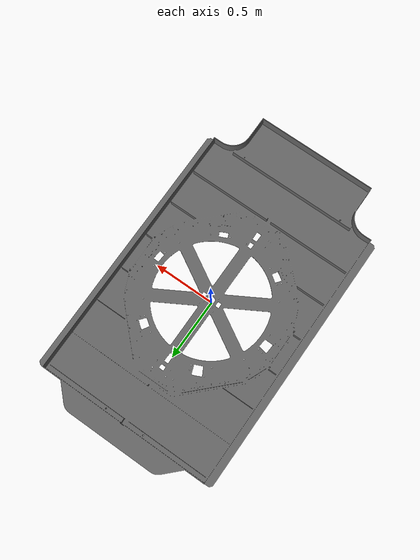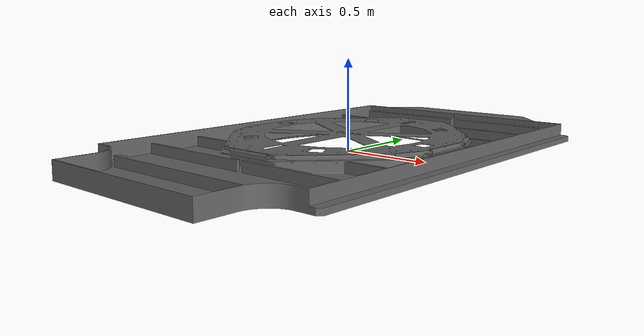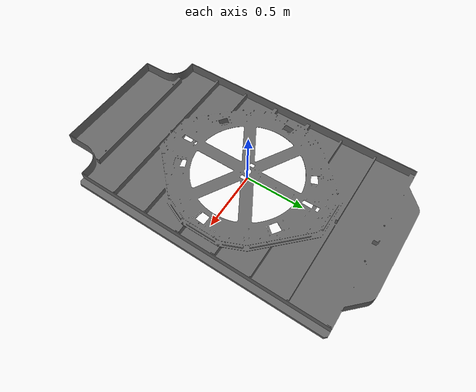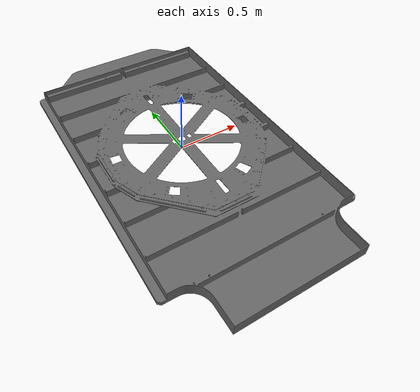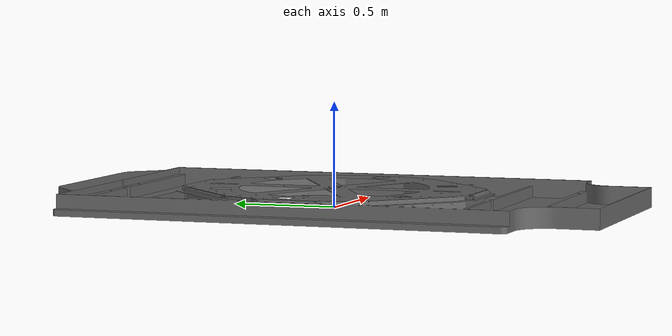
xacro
<?xml version="1.0"?>
<robot name="bru" xmlns:xacro="http://www.ros.org/wiki/xacro">

  <xacro:property name="bru_mesh_x" value="0.0"/>
  <xacro:property name="bru_mesh_y" value="0.0"/>
  <xacro:property name="bru_mesh_z" value="0.0"/>
  <xacro:property name="bru_mesh_yaw" value="1.57"/>

  <!-- Set to 0.001 for a millimetre STL exported from FreeCAD.
       Set to 1.0 if the STL is already in metres. -->
  <xacro:property name="bru_mesh_scale" value="0.001"/>

  <link name="bru_base_link">

    <visual>
      <origin
        xyz="${bru_mesh_x} ${bru_mesh_y} ${bru_mesh_z}"
        rpy="0 0 ${bru_mesh_yaw}"/>

      <geometry>
        <mesh
          filename="package://swas_description/meshes/bru/bru_visual.stl"
          scale="${bru_mesh_scale} ${bru_mesh_scale} ${bru_mesh_scale}"/>
      </geometry>

      <material name="bru_grey">
        <color rgba="0.4 0.4 0.4 1"/>
      </material>
    </visual>

    <inertial>
      <origin xyz="0 0 0" rpy="0 0 0"/>
      <mass value="100.0"/>
      <inertia ixx="5.0" ixy="0.0" ixz="0.0"
               iyy="5.0" iyz="0.0"
               izz="5.0"/>
    </inertial>

    <gazebo reference="bru_base_link">
      <gravity>false</gravity>
    </gazebo>
  </link>

  <!-- Docking target: centre of under-body opening / battery receiver. -->
  <link name="bru_center_link"/>

  <joint name="bru_base_to_center_joint" type="fixed">
    <parent link="bru_base_link"/>
    <child link="bru_center_link"/>
    <origin xyz="0 0 0" rpy="0 0 0"/>
  </joint>

  <!-- Rotating lock reference frame; no visual geometry yet. -->
  <link name="bru_lock_link">

    <inertial>
      <origin xyz="0 0 0" rpy="0 0 0"/>
      <mass value="0.1"/>
      <inertia ixx="0.0001" ixy="0.0" ixz="0.0"
               iyy="0.0001" iyz="0.0"
               izz="0.0001"/>
    </inertial>

  </link>

  <joint name="bru_lock_joint" type="revolute">
    <parent link="bru_center_link"/>
    <child link="bru_lock_link"/>
    <origin xyz="0 0 0" rpy="0 0 0"/>
    <axis xyz="0 0 1"/>
    <limit lower="${-pi}" upper="${pi}" effort="10.0" velocity="1.0"/>
  </joint>

  <gazebo reference="bru_lock_link">
    <gravity>false</gravity>
  </gazebo>

  <gazebo>
    <static>true</static>
  </gazebo>

</robot>
